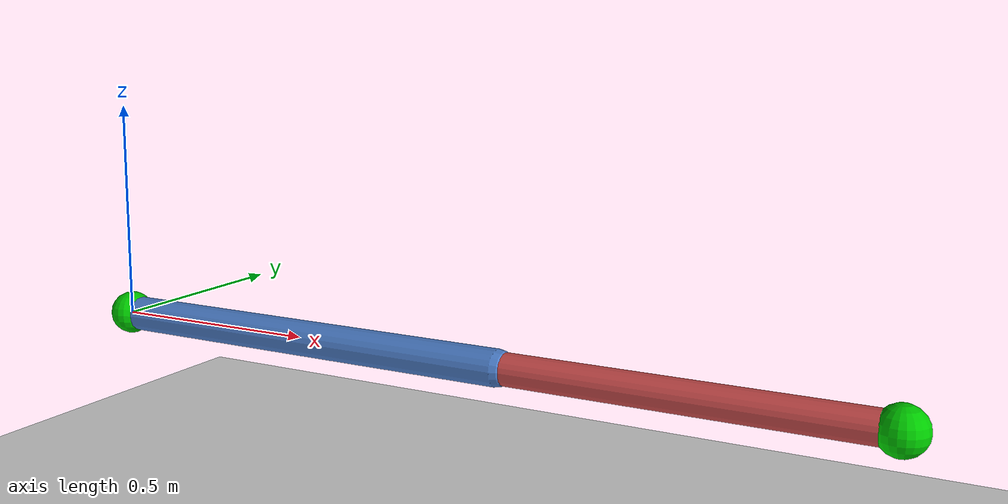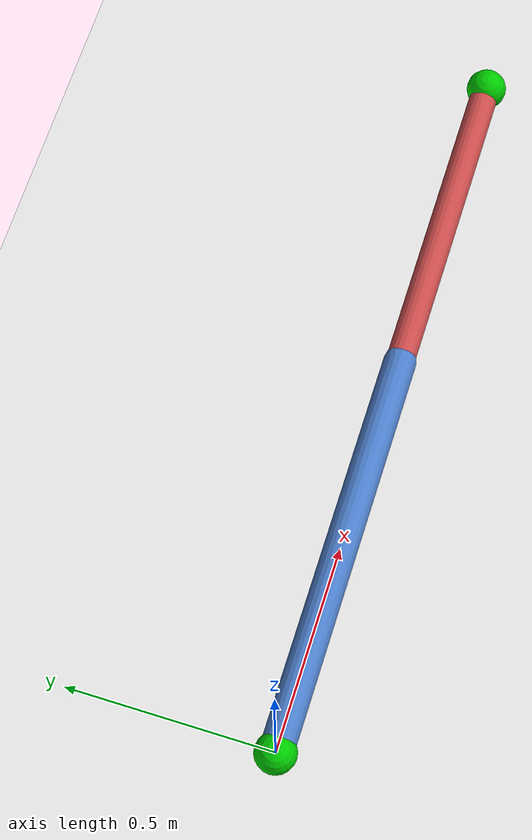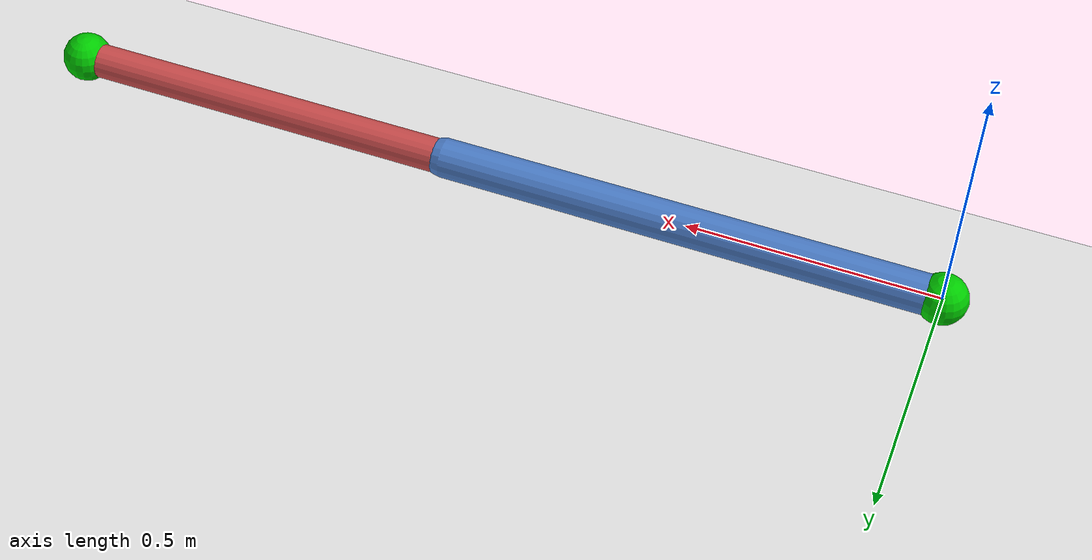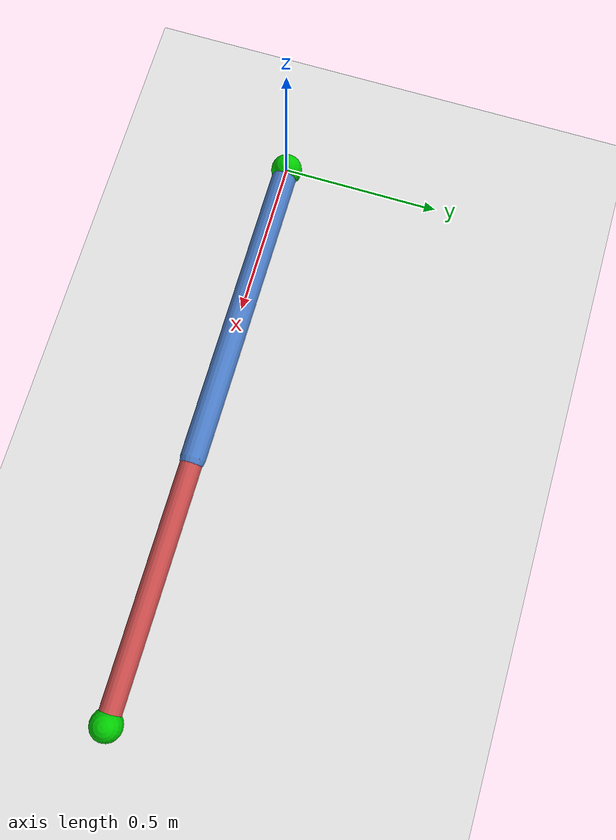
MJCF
<mujoco model="two_link_arm">
    <option gravity="0 0 0" timestep="0.001"/>

    <default>
        <joint damping="0.5"/>
        <geom contype="0" conaffinity="0"/>
    </default>

    <worldbody>
        <!-- Ground plane and lighting (provided) -->
        <light name="top" pos="0 0 2" dir="0 0 -1" diffuse="1 1 1"/>
        <geom name="floor" type="plane" size="3 3 0.1" rgba="0.9 0.9 0.9 1"
              pos="0 0 -0.5" contype="0" conaffinity="0"/>

        <!-- Base marker (provided) -->
        <site name="base" pos="0 0 0" size="0.05" rgba="0 0.8 0 1"/>

        <body name="link1" pos="0 0 0">
            <joint name="joint1" type="hinge" axis="0 0 1"/>
            <geom name="link1" type="capsule" fromto="0 0 0 1 0 0" size="0.04" rgba="0.3 0.5 0.8 1"/>
            <body name="link2" pos="1 0 0">
                <joint name="joint2" type="hinge" axis="0 0 1"/>
                <geom name="link2" type="capsule" fromto="0 0 0 0.8 0 0" size="0.035" rgba="0.8 0.3 0.3 1"/>
                <site name="end_effector" pos="0.8 0 0" size="0.05" rgba="0 0.8 0 1"/>
            </body>
        </body>
    </worldbody>

    <actuator>
        <position name="joint1_ctrl" joint="joint1" kp="10"/>
        <position name="joint2_ctrl" joint="joint2" kp="10"/>
    </actuator>
</mujoco>
